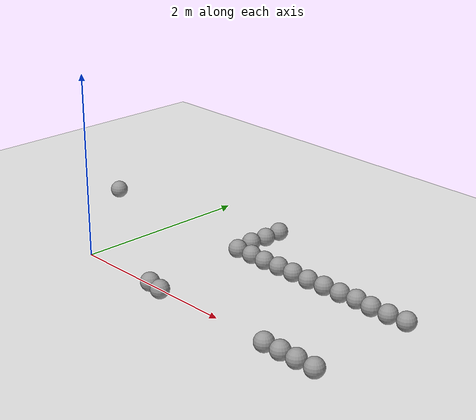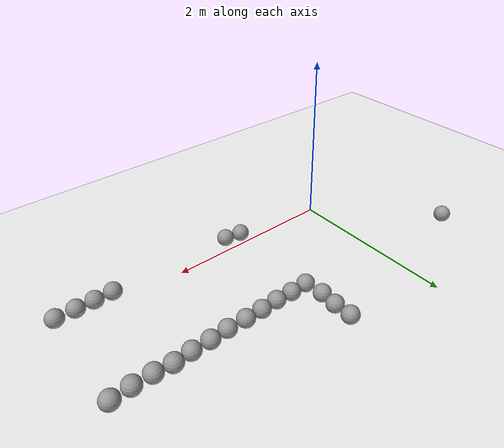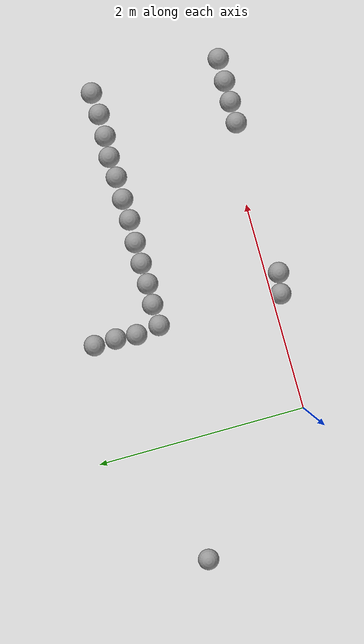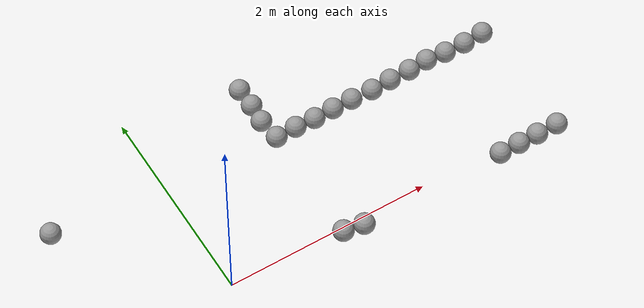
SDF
<sdf version="1.7">
 <world name="default">
  <model name="ground_plane">
   <static>1</static>
   <link name="link">
    <collision name="collision">
     <geometry><plane><normal>0 0 1</normal><size>100 100</size></plane></geometry>
     <surface>
      <contact><collide_bitmask>65535</collide_bitmask></contact>
      <friction><ode><mu>100</mu><mu2>50</mu2></ode></friction>
     </surface>
    </collision>
    <visual name="visual">
     <cast_shadows>0</cast_shadows>
     <geometry><plane><normal>0 0 1</normal><size>100 100</size></plane></geometry>
     <material>
      <script><uri>file://media/materials/scripts/gazebo.material</uri><name>Gazebo/White</name></script>
     </material>
    </visual>
   </link>
  </model>
  <model name="sphere">
   <link name="link_0">
    <inertial>
     <mass>1</mass>
     <inertia><ixx>0.1</ixx><ixy>0</ixy><ixz>0</ixz><iyy>0.1</iyy><iyz>0</iyz><izz>0.1</izz></inertia>
    </inertial>
    <visual name="visual">
     <geometry><sphere><radius>0.1</radius></sphere></geometry>
     <material>
      <lighting>1</lighting>
      <script><uri>file://media/materials/scripts/gazebo.material</uri><name>Gazebo/Grey</name></script>
      <shader type="pixel"><normal_map>__default__</normal_map></shader>
      <ambient>0.3 0.3 0.3 1</ambient>
      <diffuse>0.7 0.7 0.7 1</diffuse>
      <specular>0.01 0.01 0.01 1</specular>
      <emissive>0 0 0 1</emissive>
     </material>
    </visual>
    <collision name="collision">
     <geometry><sphere><radius>0.1</radius></sphere></geometry>
     <surface>
      <friction>
       <ode><mu>1</mu><mu2>1</mu2><fdir1>0 0 0</fdir1><slip1>0</slip1><slip2>0</slip2></ode>
       <torsional>
        <coefficient>1</coefficient>
        <patch_radius>0</patch_radius>
        <surface_radius>0</surface_radius>
        <use_patch_radius>1</use_patch_radius>
        <ode><slip>0</slip></ode>
       </torsional>
      </friction>
      <bounce><restitution_coefficient>0</restitution_coefficient><threshold>1e+06</threshold></bounce>
      <contact>
       <collide_without_contact>0</collide_without_contact>
       <collide_without_contact_bitmask>1</collide_without_contact_bitmask>
       <collide_bitmask>1</collide_bitmask>
       <ode>
        <soft_cfm>0</soft_cfm>
        <soft_erp>0.2</soft_erp>
        <kp>1e+13</kp>
        <kd>1</kd>
        <max_vel>0.01</max_vel>
        <min_depth>0</min_depth>
       </ode>
       <bullet>
        <split_impulse>1</split_impulse>
        <split_impulse_penetration_threshold>-0.01</split_impulse_penetration_threshold>
        <soft_cfm>0</soft_cfm>
        <soft_erp>0.2</soft_erp>
        <kp>1e+13</kp>
        <kd>1</kd>
       </bullet>
      </contact>
     </surface>
    </collision>
   </link>
   <static>0</static>
   <pose>1.12265 1.10164 0.1 0 -0 0</pose>
  </model>
  <model name="sphere_0">
   <link name="link_0">
    <inertial>
     <mass>1</mass>
     <inertia><ixx>0.1</ixx><ixy>0</ixy><ixz>0</ixz><iyy>0.1</iyy><iyz>0</iyz><izz>0.1</izz></inertia>
    </inertial>
    <visual name="visual">
     <geometry><sphere><radius>0.1</radius></sphere></geometry>
     <material>
      <lighting>1</lighting>
      <script><uri>file://media/materials/scripts/gazebo.material</uri><name>Gazebo/Grey</name></script>
      <shader type="pixel"><normal_map>__default__</normal_map></shader>
      <ambient>0.3 0.3 0.3 1</ambient>
      <diffuse>0.7 0.7 0.7 1</diffuse>
      <specular>0.01 0.01 0.01 1</specular>
      <emissive>0 0 0 1</emissive>
     </material>
    </visual>
    <collision name="collision">
     <geometry><sphere><radius>0.1</radius></sphere></geometry>
     <surface>
      <friction>
       <ode><mu>1</mu><mu2>1</mu2><fdir1>0 0 0</fdir1><slip1>0</slip1><slip2>0</slip2></ode>
       <torsional>
        <coefficient>1</coefficient>
        <patch_radius>0</patch_radius>
        <surface_radius>0</surface_radius>
        <use_patch_radius>1</use_patch_radius>
        <ode><slip>0</slip></ode>
       </torsional>
      </friction>
      <bounce><restitution_coefficient>0</restitution_coefficient><threshold>1e+06</threshold></bounce>
      <contact>
       <collide_without_contact>0</collide_without_contact>
       <collide_without_contact_bitmask>1</collide_without_contact_bitmask>
       <collide_bitmask>1</collide_bitmask>
       <ode>
        <soft_cfm>0</soft_cfm>
        <soft_erp>0.2</soft_erp>
        <kp>1e+13</kp>
        <kd>1</kd>
        <max_vel>0.01</max_vel>
        <min_depth>0</min_depth>
       </ode>
       <bullet>
        <split_impulse>1</split_impulse>
        <split_impulse_penetration_threshold>-0.01</split_impulse_penetration_threshold>
        <soft_cfm>0</soft_cfm>
        <soft_erp>0.2</soft_erp>
        <kp>1e+13</kp>
        <kd>1</kd>
       </bullet>
      </contact>
     </surface>
    </collision>
   </link>
   <static>0</static>
   <pose>1.09484 1.32792 0.1 0.007885 -0.000594 2e-06</pose>
  </model>
  <model name="sphere_1">
   <link name="link_0">
    <inertial>
     <mass>1</mass>
     <inertia><ixx>0.1</ixx><ixy>0</ixy><ixz>0</ixz><iyy>0.1</iyy><iyz>0</iyz><izz>0.1</izz></inertia>
    </inertial>
    <visual name="visual">
     <geometry><sphere><radius>0.1</radius></sphere></geometry>
     <material>
      <lighting>1</lighting>
      <script><uri>file://media/materials/scripts/gazebo.material</uri><name>Gazebo/Grey</name></script>
      <shader type="pixel"><normal_map>__default__</normal_map></shader>
      <ambient>0.3 0.3 0.3 1</ambient>
      <diffuse>0.7 0.7 0.7 1</diffuse>
      <specular>0.01 0.01 0.01 1</specular>
      <emissive>0 0 0 1</emissive>
     </material>
    </visual>
    <collision name="collision">
     <geometry><sphere><radius>0.1</radius></sphere></geometry>
     <surface>
      <friction>
       <ode><mu>1</mu><mu2>1</mu2><fdir1>0 0 0</fdir1><slip1>0</slip1><slip2>0</slip2></ode>
       <torsional>
        <coefficient>1</coefficient>
        <patch_radius>0</patch_radius>
        <surface_radius>0</surface_radius>
        <use_patch_radius>1</use_patch_radius>
        <ode><slip>0</slip></ode>
       </torsional>
      </friction>
      <bounce><restitution_coefficient>0</restitution_coefficient><threshold>1e+06</threshold></bounce>
      <contact>
       <collide_without_contact>0</collide_without_contact>
       <collide_without_contact_bitmask>1</collide_without_contact_bitmask>
       <collide_bitmask>1</collide_bitmask>
       <ode>
        <soft_cfm>0</soft_cfm>
        <soft_erp>0.2</soft_erp>
        <kp>1e+13</kp>
        <kd>1</kd>
        <max_vel>0.01</max_vel>
        <min_depth>0</min_depth>
       </ode>
       <bullet>
        <split_impulse>1</split_impulse>
        <split_impulse_penetration_threshold>-0.01</split_impulse_penetration_threshold>
        <soft_cfm>0</soft_cfm>
        <soft_erp>0.2</soft_erp>
        <kp>1e+13</kp>
        <kd>1</kd>
       </bullet>
      </contact>
     </surface>
    </collision>
   </link>
   <static>0</static>
   <pose>1.10973 1.52904 0.1 -0.008762 0.000649 1e-06</pose>
  </model>
  <model name="sphere_2">
   <link name="link_0">
    <inertial>
     <mass>1</mass>
     <inertia><ixx>0.1</ixx><ixy>0</ixy><ixz>0</ixz><iyy>0.1</iyy><iyz>0</iyz><izz>0.1</izz></inertia>
    </inertial>
    <visual name="visual">
     <geometry><sphere><radius>0.1</radius></sphere></geometry>
     <material>
      <lighting>1</lighting>
      <script><uri>file://media/materials/scripts/gazebo.material</uri><name>Gazebo/Grey</name></script>
      <shader type="pixel"><normal_map>__default__</normal_map></shader>
      <ambient>0.3 0.3 0.3 1</ambient>
      <diffuse>0.7 0.7 0.7 1</diffuse>
      <specular>0.01 0.01 0.01 1</specular>
      <emissive>0 0 0 1</emissive>
     </material>
    </visual>
    <collision name="collision">
     <geometry><sphere><radius>0.1</radius></sphere></geometry>
     <surface>
      <friction>
       <ode><mu>1</mu><mu2>1</mu2><fdir1>0 0 0</fdir1><slip1>0</slip1><slip2>0</slip2></ode>
       <torsional>
        <coefficient>1</coefficient>
        <patch_radius>0</patch_radius>
        <surface_radius>0</surface_radius>
        <use_patch_radius>1</use_patch_radius>
        <ode><slip>0</slip></ode>
       </torsional>
      </friction>
      <bounce><restitution_coefficient>0</restitution_coefficient><threshold>1e+06</threshold></bounce>
      <contact>
       <collide_without_contact>0</collide_without_contact>
       <collide_without_contact_bitmask>1</collide_without_contact_bitmask>
       <collide_bitmask>1</collide_bitmask>
       <ode>
        <soft_cfm>0</soft_cfm>
        <soft_erp>0.2</soft_erp>
        <kp>1e+13</kp>
        <kd>1</kd>
        <max_vel>0.01</max_vel>
        <min_depth>0</min_depth>
       </ode>
       <bullet>
        <split_impulse>1</split_impulse>
        <split_impulse_penetration_threshold>-0.01</split_impulse_penetration_threshold>
        <soft_cfm>0</soft_cfm>
        <soft_erp>0.2</soft_erp>
        <kp>1e+13</kp>
        <kd>1</kd>
       </bullet>
      </contact>
     </surface>
    </collision>
   </link>
   <static>0</static>
   <pose>1.10382 1.73894 0.1 0.007911 -0.00051 2e-06</pose>
  </model>
  <model name="sphere_37">
   <link name="link_0">
    <inertial>
     <mass>1</mass>
     <inertia><ixx>0.1</ixx><ixy>0</ixy><ixz>0</ixz><iyy>0.1</iyy><iyz>0</iyz><izz>0.1</izz></inertia>
    </inertial>
    <visual name="visual">
     <geometry><sphere><radius>0.1</radius></sphere></geometry>
     <material>
      <lighting>1</lighting>
      <script><uri>file://media/materials/scripts/gazebo.material</uri><name>Gazebo/Grey</name></script>
      <shader type="pixel"><normal_map>__default__</normal_map></shader>
      <ambient>0.3 0.3 0.3 1</ambient>
      <diffuse>0.7 0.7 0.7 1</diffuse>
      <specular>0.01 0.01 0.01 1</specular>
      <emissive>0 0 0 1</emissive>
     </material>
    </visual>
    <collision name="collision">
     <geometry><sphere><radius>0.1</radius></sphere></geometry>
     <surface>
      <friction>
       <ode><mu>1</mu><mu2>1</mu2><fdir1>0 0 0</fdir1><slip1>0</slip1><slip2>0</slip2></ode>
       <torsional>
        <coefficient>1</coefficient>
        <patch_radius>0</patch_radius>
        <surface_radius>0</surface_radius>
        <use_patch_radius>1</use_patch_radius>
        <ode><slip>0</slip></ode>
       </torsional>
      </friction>
      <bounce><restitution_coefficient>0</restitution_coefficient><threshold>1e+06</threshold></bounce>
      <contact>
       <collide_without_contact>0</collide_without_contact>
       <collide_without_contact_bitmask>1</collide_without_contact_bitmask>
       <collide_bitmask>1</collide_bitmask>
       <ode>
        <soft_cfm>0</soft_cfm>
        <soft_erp>0.2</soft_erp>
        <kp>1e+13</kp>
        <kd>1</kd>
        <max_vel>0.01</max_vel>
        <min_depth>0</min_depth>
       </ode>
       <bullet>
        <split_impulse>1</split_impulse>
        <split_impulse_penetration_threshold>-0.01</split_impulse_penetration_threshold>
        <soft_cfm>0</soft_cfm>
        <soft_erp>0.2</soft_erp>
        <kp>1e+13</kp>
        <kd>1</kd>
       </bullet>
      </contact>
     </surface>
    </collision>
   </link>
   <static>0</static>
   <pose>-1.12279 1.24781 0.1 0 -0 0</pose>
  </model>
  <model name="sphere_93">
   <link name="link_0">
    <inertial>
     <mass>1</mass>
     <inertia><ixx>0.1</ixx><ixy>0</ixy><ixz>0</ixz><iyy>0.1</iyy><iyz>0</iyz><izz>0.1</izz></inertia>
    </inertial>
    <visual name="visual">
     <geometry><sphere><radius>0.1</radius></sphere></geometry>
     <material>
      <lighting>1</lighting>
      <script><uri>file://media/materials/scripts/gazebo.material</uri><name>Gazebo/Grey</name></script>
      <shader type="pixel"><normal_map>__default__</normal_map></shader>
      <ambient>0.3 0.3 0.3 1</ambient>
      <diffuse>0.7 0.7 0.7 1</diffuse>
      <specular>0.01 0.01 0.01 1</specular>
      <emissive>0 0 0 1</emissive>
     </material>
    </visual>
    <collision name="collision">
     <geometry><sphere><radius>0.1</radius></sphere></geometry>
     <surface>
      <friction>
       <ode><mu>1</mu><mu2>1</mu2><fdir1>0 0 0</fdir1><slip1>0</slip1><slip2>0</slip2></ode>
       <torsional>
        <coefficient>1</coefficient>
        <patch_radius>0</patch_radius>
        <surface_radius>0</surface_radius>
        <use_patch_radius>1</use_patch_radius>
        <ode><slip>0</slip></ode>
       </torsional>
      </friction>
      <bounce><restitution_coefficient>0</restitution_coefficient><threshold>1e+06</threshold></bounce>
      <contact>
       <collide_without_contact>0</collide_without_contact>
       <collide_without_contact_bitmask>1</collide_without_contact_bitmask>
       <collide_bitmask>1</collide_bitmask>
       <ode>
        <soft_cfm>0</soft_cfm>
        <soft_erp>0.2</soft_erp>
        <kp>1e+13</kp>
        <kd>1</kd>
        <max_vel>0.01</max_vel>
        <min_depth>0</min_depth>
       </ode>
       <bullet>
        <split_impulse>1</split_impulse>
        <split_impulse_penetration_threshold>-0.01</split_impulse_penetration_threshold>
        <soft_cfm>0</soft_cfm>
        <soft_erp>0.2</soft_erp>
        <kp>1e+13</kp>
        <kd>1</kd>
       </bullet>
      </contact>
     </surface>
    </collision>
   </link>
   <static>0</static>
   <pose>1.10054 -0.081045 0.1 0 -0 0</pose>
  </model>
  <model name="sphere_102">
   <link name="link_0">
    <inertial>
     <mass>1</mass>
     <inertia><ixx>0.1</ixx><ixy>0</ixy><ixz>0</ixz><iyy>0.1</iyy><iyz>0</iyz><izz>0.1</izz></inertia>
    </inertial>
    <visual name="visual">
     <geometry><sphere><radius>0.1</radius></sphere></geometry>
     <material>
      <lighting>1</lighting>
      <script><uri>file://media/materials/scripts/gazebo.material</uri><name>Gazebo/Grey</name></script>
      <shader type="pixel"><normal_map>__default__</normal_map></shader>
      <ambient>0.3 0.3 0.3 1</ambient>
      <diffuse>0.7 0.7 0.7 1</diffuse>
      <specular>0.01 0.01 0.01 1</specular>
      <emissive>0 0 0 1</emissive>
     </material>
    </visual>
    <collision name="collision">
     <geometry><sphere><radius>0.1</radius></sphere></geometry>
     <surface>
      <friction>
       <ode><mu>1</mu><mu2>1</mu2><fdir1>0 0 0</fdir1><slip1>0</slip1><slip2>0</slip2></ode>
       <torsional>
        <coefficient>1</coefficient>
        <patch_radius>0</patch_radius>
        <surface_radius>0</surface_radius>
        <use_patch_radius>1</use_patch_radius>
        <ode><slip>0</slip></ode>
       </torsional>
      </friction>
      <bounce><restitution_coefficient>0</restitution_coefficient><threshold>1e+06</threshold></bounce>
      <contact>
       <collide_without_contact>0</collide_without_contact>
       <collide_without_contact_bitmask>1</collide_without_contact_bitmask>
       <collide_bitmask>1</collide_bitmask>
       <ode>
        <soft_cfm>0</soft_cfm>
        <soft_erp>0.2</soft_erp>
        <kp>1e+13</kp>
        <kd>1</kd>
        <max_vel>0.01</max_vel>
        <min_depth>0</min_depth>
       </ode>
       <bullet>
        <split_impulse>1</split_impulse>
        <split_impulse_penetration_threshold>-0.01</split_impulse_penetration_threshold>
        <soft_cfm>0</soft_cfm>
        <soft_erp>0.2</soft_erp>
        <kp>1e+13</kp>
        <kd>1</kd>
       </bullet>
      </contact>
     </surface>
    </collision>
   </link>
   <static>0</static>
   <pose>1.32851 1.10709 0.1 -0.000271 -0.007928 3e-06</pose>
  </model>
  <model name="sphere_103">
   <link name="link_0">
    <inertial>
     <mass>1</mass>
     <inertia><ixx>0.1</ixx><ixy>0</ixy><ixz>0</ixz><iyy>0.1</iyy><iyz>0</iyz><izz>0.1</izz></inertia>
    </inertial>
    <visual name="visual">
     <geometry><sphere><radius>0.1</radius></sphere></geometry>
     <material>
      <lighting>1</lighting>
      <script><uri>file://media/materials/scripts/gazebo.material</uri><name>Gazebo/Grey</name></script>
      <shader type="pixel"><normal_map>__default__</normal_map></shader>
      <ambient>0.3 0.3 0.3 1</ambient>
      <diffuse>0.7 0.7 0.7 1</diffuse>
      <specular>0.01 0.01 0.01 1</specular>
      <emissive>0 0 0 1</emissive>
     </material>
    </visual>
    <collision name="collision">
     <geometry><sphere><radius>0.1</radius></sphere></geometry>
     <surface>
      <friction>
       <ode><mu>1</mu><mu2>1</mu2><fdir1>0 0 0</fdir1><slip1>0</slip1><slip2>0</slip2></ode>
       <torsional>
        <coefficient>1</coefficient>
        <patch_radius>0</patch_radius>
        <surface_radius>0</surface_radius>
        <use_patch_radius>1</use_patch_radius>
        <ode><slip>0</slip></ode>
       </torsional>
      </friction>
      <bounce><restitution_coefficient>0</restitution_coefficient><threshold>1e+06</threshold></bounce>
      <contact>
       <collide_without_contact>0</collide_without_contact>
       <collide_without_contact_bitmask>1</collide_without_contact_bitmask>
       <collide_bitmask>1</collide_bitmask>
       <ode>
        <soft_cfm>0</soft_cfm>
        <soft_erp>0.2</soft_erp>
        <kp>1e+13</kp>
        <kd>1</kd>
        <max_vel>0.01</max_vel>
        <min_depth>0</min_depth>
       </ode>
       <bullet>
        <split_impulse>1</split_impulse>
        <split_impulse_penetration_threshold>-0.01</split_impulse_penetration_threshold>
        <soft_cfm>0</soft_cfm>
        <soft_erp>0.2</soft_erp>
        <kp>1e+13</kp>
        <kd>1</kd>
       </bullet>
      </contact>
     </surface>
    </collision>
   </link>
   <static>0</static>
   <pose>1.52841 1.10035 0.1 0.00055 0.001087 0</pose>
  </model>
  <model name="sphere_104">
   <link name="link_0">
    <inertial>
     <mass>1</mass>
     <inertia><ixx>0.1</ixx><ixy>0</ixy><ixz>0</ixz><iyy>0.1</iyy><iyz>0</iyz><izz>0.1</izz></inertia>
    </inertial>
    <visual name="visual">
     <geometry><sphere><radius>0.1</radius></sphere></geometry>
     <material>
      <lighting>1</lighting>
      <script><uri>file://media/materials/scripts/gazebo.material</uri><name>Gazebo/Grey</name></script>
      <shader type="pixel"><normal_map>__default__</normal_map></shader>
      <ambient>0.3 0.3 0.3 1</ambient>
      <diffuse>0.7 0.7 0.7 1</diffuse>
      <specular>0.01 0.01 0.01 1</specular>
      <emissive>0 0 0 1</emissive>
     </material>
    </visual>
    <collision name="collision">
     <geometry><sphere><radius>0.1</radius></sphere></geometry>
     <surface>
      <friction>
       <ode><mu>1</mu><mu2>1</mu2><fdir1>0 0 0</fdir1><slip1>0</slip1><slip2>0</slip2></ode>
       <torsional>
        <coefficient>1</coefficient>
        <patch_radius>0</patch_radius>
        <surface_radius>0</surface_radius>
        <use_patch_radius>1</use_patch_radius>
        <ode><slip>0</slip></ode>
       </torsional>
      </friction>
      <bounce><restitution_coefficient>0</restitution_coefficient><threshold>1e+06</threshold></bounce>
      <contact>
       <collide_without_contact>0</collide_without_contact>
       <collide_without_contact_bitmask>1</collide_without_contact_bitmask>
       <collide_bitmask>1</collide_bitmask>
       <ode>
        <soft_cfm>0</soft_cfm>
        <soft_erp>0.2</soft_erp>
        <kp>1e+13</kp>
        <kd>1</kd>
        <max_vel>0.01</max_vel>
        <min_depth>0</min_depth>
       </ode>
       <bullet>
        <split_impulse>1</split_impulse>
        <split_impulse_penetration_threshold>-0.01</split_impulse_penetration_threshold>
        <soft_cfm>0</soft_cfm>
        <soft_erp>0.2</soft_erp>
        <kp>1e+13</kp>
        <kd>1</kd>
       </bullet>
      </contact>
     </surface>
    </collision>
   </link>
   <static>0</static>
   <pose>1.72997 1.10661 0.1 -0.000274 0.008812 -6e-06</pose>
  </model>
  <model name="sphere_105">
   <link name="link_0">
    <inertial>
     <mass>1</mass>
     <inertia><ixx>0.1</ixx><ixy>0</ixy><ixz>0</ixz><iyy>0.1</iyy><iyz>0</iyz><izz>0.1</izz></inertia>
    </inertial>
    <visual name="visual">
     <geometry><sphere><radius>0.1</radius></sphere></geometry>
     <material>
      <lighting>1</lighting>
      <script><uri>file://media/materials/scripts/gazebo.material</uri><name>Gazebo/Grey</name></script>
      <shader type="pixel"><normal_map>__default__</normal_map></shader>
      <ambient>0.3 0.3 0.3 1</ambient>
      <diffuse>0.7 0.7 0.7 1</diffuse>
      <specular>0.01 0.01 0.01 1</specular>
      <emissive>0 0 0 1</emissive>
     </material>
    </visual>
    <collision name="collision">
     <geometry><sphere><radius>0.1</radius></sphere></geometry>
     <surface>
      <friction>
       <ode><mu>1</mu><mu2>1</mu2><fdir1>0 0 0</fdir1><slip1>0</slip1><slip2>0</slip2></ode>
       <torsional>
        <coefficient>1</coefficient>
        <patch_radius>0</patch_radius>
        <surface_radius>0</surface_radius>
        <use_patch_radius>1</use_patch_radius>
        <ode><slip>0</slip></ode>
       </torsional>
      </friction>
      <bounce><restitution_coefficient>0</restitution_coefficient><threshold>1e+06</threshold></bounce>
      <contact>
       <collide_without_contact>0</collide_without_contact>
       <collide_without_contact_bitmask>1</collide_without_contact_bitmask>
       <collide_bitmask>1</collide_bitmask>
       <ode>
        <soft_cfm>0</soft_cfm>
        <soft_erp>0.2</soft_erp>
        <kp>1e+13</kp>
        <kd>1</kd>
        <max_vel>0.01</max_vel>
        <min_depth>0</min_depth>
       </ode>
       <bullet>
        <split_impulse>1</split_impulse>
        <split_impulse_penetration_threshold>-0.01</split_impulse_penetration_threshold>
        <soft_cfm>0</soft_cfm>
        <soft_erp>0.2</soft_erp>
        <kp>1e+13</kp>
        <kd>1</kd>
       </bullet>
      </contact>
     </surface>
    </collision>
   </link>
   <static>0</static>
   <pose>1.9344 1.10728 0.1 0 -0 0</pose>
  </model>
  <model name="sphere_106">
   <link name="link_0">
    <inertial>
     <mass>1</mass>
     <inertia><ixx>0.1</ixx><ixy>0</ixy><ixz>0</ixz><iyy>0.1</iyy><iyz>0</iyz><izz>0.1</izz></inertia>
    </inertial>
    <visual name="visual">
     <geometry><sphere><radius>0.1</radius></sphere></geometry>
     <material>
      <lighting>1</lighting>
      <script><uri>file://media/materials/scripts/gazebo.material</uri><name>Gazebo/Grey</name></script>
      <shader type="pixel"><normal_map>__default__</normal_map></shader>
      <ambient>0.3 0.3 0.3 1</ambient>
      <diffuse>0.7 0.7 0.7 1</diffuse>
      <specular>0.01 0.01 0.01 1</specular>
      <emissive>0 0 0 1</emissive>
     </material>
    </visual>
    <collision name="collision">
     <geometry><sphere><radius>0.1</radius></sphere></geometry>
     <surface>
      <friction>
       <ode><mu>1</mu><mu2>1</mu2><fdir1>0 0 0</fdir1><slip1>0</slip1><slip2>0</slip2></ode>
       <torsional>
        <coefficient>1</coefficient>
        <patch_radius>0</patch_radius>
        <surface_radius>0</surface_radius>
        <use_patch_radius>1</use_patch_radius>
        <ode><slip>0</slip></ode>
       </torsional>
      </friction>
      <bounce><restitution_coefficient>0</restitution_coefficient><threshold>1e+06</threshold></bounce>
      <contact>
       <collide_without_contact>0</collide_without_contact>
       <collide_without_contact_bitmask>1</collide_without_contact_bitmask>
       <collide_bitmask>1</collide_bitmask>
       <ode>
        <soft_cfm>0</soft_cfm>
        <soft_erp>0.2</soft_erp>
        <kp>1e+13</kp>
        <kd>1</kd>
        <max_vel>0.01</max_vel>
        <min_depth>0</min_depth>
       </ode>
       <bullet>
        <split_impulse>1</split_impulse>
        <split_impulse_penetration_threshold>-0.01</split_impulse_penetration_threshold>
        <soft_cfm>0</soft_cfm>
        <soft_erp>0.2</soft_erp>
        <kp>1e+13</kp>
        <kd>1</kd>
       </bullet>
      </contact>
     </surface>
    </collision>
   </link>
   <static>0</static>
   <pose>2.15319 1.101 0.1 0 -0 0</pose>
  </model>
  <model name="sphere_107">
   <link name="link_0">
    <inertial>
     <mass>1</mass>
     <inertia><ixx>0.1</ixx><ixy>0</ixy><ixz>0</ixz><iyy>0.1</iyy><iyz>0</iyz><izz>0.1</izz></inertia>
    </inertial>
    <visual name="visual">
     <geometry><sphere><radius>0.1</radius></sphere></geometry>
     <material>
      <lighting>1</lighting>
      <script><uri>file://media/materials/scripts/gazebo.material</uri><name>Gazebo/Grey</name></script>
      <shader type="pixel"><normal_map>__default__</normal_map></shader>
      <ambient>0.3 0.3 0.3 1</ambient>
      <diffuse>0.7 0.7 0.7 1</diffuse>
      <specular>0.01 0.01 0.01 1</specular>
      <emissive>0 0 0 1</emissive>
     </material>
    </visual>
    <collision name="collision">
     <geometry><sphere><radius>0.1</radius></sphere></geometry>
     <surface>
      <friction>
       <ode><mu>1</mu><mu2>1</mu2><fdir1>0 0 0</fdir1><slip1>0</slip1><slip2>0</slip2></ode>
       <torsional>
        <coefficient>1</coefficient>
        <patch_radius>0</patch_radius>
        <surface_radius>0</surface_radius>
        <use_patch_radius>1</use_patch_radius>
        <ode><slip>0</slip></ode>
       </torsional>
      </friction>
      <bounce><restitution_coefficient>0</restitution_coefficient><threshold>1e+06</threshold></bounce>
      <contact>
       <collide_without_contact>0</collide_without_contact>
       <collide_without_contact_bitmask>1</collide_without_contact_bitmask>
       <collide_bitmask>1</collide_bitmask>
       <ode>
        <soft_cfm>0</soft_cfm>
        <soft_erp>0.2</soft_erp>
        <kp>1e+13</kp>
        <kd>1</kd>
        <max_vel>0.01</max_vel>
        <min_depth>0</min_depth>
       </ode>
       <bullet>
        <split_impulse>1</split_impulse>
        <split_impulse_penetration_threshold>-0.01</split_impulse_penetration_threshold>
        <soft_cfm>0</soft_cfm>
        <soft_erp>0.2</soft_erp>
        <kp>1e+13</kp>
        <kd>1</kd>
       </bullet>
      </contact>
     </surface>
    </collision>
   </link>
   <static>0</static>
   <pose>2.35932 1.11126 0.1 0 -0 0</pose>
  </model>
  <model name="sphere_108">
   <link name="link_0">
    <inertial>
     <mass>1</mass>
     <inertia><ixx>0.1</ixx><ixy>0</ixy><ixz>0</ixz><iyy>0.1</iyy><iyz>0</iyz><izz>0.1</izz></inertia>
    </inertial>
    <visual name="visual">
     <geometry><sphere><radius>0.1</radius></sphere></geometry>
     <material>
      <lighting>1</lighting>
      <script><uri>file://media/materials/scripts/gazebo.material</uri><name>Gazebo/Grey</name></script>
      <shader type="pixel"><normal_map>__default__</normal_map></shader>
      <ambient>0.3 0.3 0.3 1</ambient>
      <diffuse>0.7 0.7 0.7 1</diffuse>
      <specular>0.01 0.01 0.01 1</specular>
      <emissive>0 0 0 1</emissive>
     </material>
    </visual>
    <collision name="collision">
     <geometry><sphere><radius>0.1</radius></sphere></geometry>
     <surface>
      <friction>
       <ode><mu>1</mu><mu2>1</mu2><fdir1>0 0 0</fdir1><slip1>0</slip1><slip2>0</slip2></ode>
       <torsional>
        <coefficient>1</coefficient>
        <patch_radius>0</patch_radius>
        <surface_radius>0</surface_radius>
        <use_patch_radius>1</use_patch_radius>
        <ode><slip>0</slip></ode>
       </torsional>
      </friction>
      <bounce><restitution_coefficient>0</restitution_coefficient><threshold>1e+06</threshold></bounce>
      <contact>
       <collide_without_contact>0</collide_without_contact>
       <collide_without_contact_bitmask>1</collide_without_contact_bitmask>
       <collide_bitmask>1</collide_bitmask>
       <ode>
        <soft_cfm>0</soft_cfm>
        <soft_erp>0.2</soft_erp>
        <kp>1e+13</kp>
        <kd>1</kd>
        <max_vel>0.01</max_vel>
        <min_depth>0</min_depth>
       </ode>
       <bullet>
        <split_impulse>1</split_impulse>
        <split_impulse_penetration_threshold>-0.01</split_impulse_penetration_threshold>
        <soft_cfm>0</soft_cfm>
        <soft_erp>0.2</soft_erp>
        <kp>1e+13</kp>
        <kd>1</kd>
       </bullet>
      </contact>
     </surface>
    </collision>
   </link>
   <static>0</static>
   <pose>2.57294 1.11245 0.1 0.00212 -0.015611 -0.001092</pose>
  </model>
  <model name="sphere_109">
   <link name="link_0">
    <inertial>
     <mass>1</mass>
     <inertia><ixx>0.1</ixx><ixy>0</ixy><ixz>0</ixz><iyy>0.1</iyy><iyz>0</iyz><izz>0.1</izz></inertia>
    </inertial>
    <visual name="visual">
     <geometry><sphere><radius>0.1</radius></sphere></geometry>
     <material>
      <lighting>1</lighting>
      <script><uri>file://media/materials/scripts/gazebo.material</uri><name>Gazebo/Grey</name></script>
      <shader type="pixel"><normal_map>__default__</normal_map></shader>
      <ambient>0.3 0.3 0.3 1</ambient>
      <diffuse>0.7 0.7 0.7 1</diffuse>
      <specular>0.01 0.01 0.01 1</specular>
      <emissive>0 0 0 1</emissive>
     </material>
    </visual>
    <collision name="collision">
     <geometry><sphere><radius>0.1</radius></sphere></geometry>
     <surface>
      <friction>
       <ode><mu>1</mu><mu2>1</mu2><fdir1>0 0 0</fdir1><slip1>0</slip1><slip2>0</slip2></ode>
       <torsional>
        <coefficient>1</coefficient>
        <patch_radius>0</patch_radius>
        <surface_radius>0</surface_radius>
        <use_patch_radius>1</use_patch_radius>
        <ode><slip>0</slip></ode>
       </torsional>
      </friction>
      <bounce><restitution_coefficient>0</restitution_coefficient><threshold>1e+06</threshold></bounce>
      <contact>
       <collide_without_contact>0</collide_without_contact>
       <collide_without_contact_bitmask>1</collide_without_contact_bitmask>
       <collide_bitmask>1</collide_bitmask>
       <ode>
        <soft_cfm>0</soft_cfm>
        <soft_erp>0.2</soft_erp>
        <kp>1e+13</kp>
        <kd>1</kd>
        <max_vel>0.01</max_vel>
        <min_depth>0</min_depth>
       </ode>
       <bullet>
        <split_impulse>1</split_impulse>
        <split_impulse_penetration_threshold>-0.01</split_impulse_penetration_threshold>
        <soft_cfm>0</soft_cfm>
        <soft_erp>0.2</soft_erp>
        <kp>1e+13</kp>
        <kd>1</kd>
       </bullet>
      </contact>
     </surface>
    </collision>
   </link>
   <static>0</static>
   <pose>1.29824 -0.115109 0.1 -0.000117 -0.009253 1.3e-05</pose>
  </model>
  <model name="sphere_116">
   <link name="link_0">
    <inertial>
     <mass>1</mass>
     <inertia><ixx>0.1</ixx><ixy>0</ixy><ixz>0</ixz><iyy>0.1</iyy><iyz>0</iyz><izz>0.1</izz></inertia>
    </inertial>
    <visual name="visual">
     <geometry><sphere><radius>0.1</radius></sphere></geometry>
     <material>
      <lighting>1</lighting>
      <script><uri>file://media/materials/scripts/gazebo.material</uri><name>Gazebo/Grey</name></script>
      <shader type="pixel"><normal_map>__default__</normal_map></shader>
      <ambient>0.3 0.3 0.3 1</ambient>
      <diffuse>0.7 0.7 0.7 1</diffuse>
      <specular>0.01 0.01 0.01 1</specular>
      <emissive>0 0 0 1</emissive>
     </material>
    </visual>
    <collision name="collision">
     <geometry><sphere><radius>0.1</radius></sphere></geometry>
     <surface>
      <friction>
       <ode><mu>1</mu><mu2>1</mu2><fdir1>0 0 0</fdir1><slip1>0</slip1><slip2>0</slip2></ode>
       <torsional>
        <coefficient>1</coefficient>
        <patch_radius>0</patch_radius>
        <surface_radius>0</surface_radius>
        <use_patch_radius>1</use_patch_radius>
        <ode><slip>0</slip></ode>
       </torsional>
      </friction>
      <bounce><restitution_coefficient>0</restitution_coefficient><threshold>1e+06</threshold></bounce>
      <contact>
       <collide_without_contact>0</collide_without_contact>
       <collide_without_contact_bitmask>1</collide_without_contact_bitmask>
       <collide_bitmask>1</collide_bitmask>
       <ode>
        <soft_cfm>0</soft_cfm>
        <soft_erp>0.2</soft_erp>
        <kp>1e+13</kp>
        <kd>1</kd>
        <max_vel>0.01</max_vel>
        <min_depth>0</min_depth>
       </ode>
       <bullet>
        <split_impulse>1</split_impulse>
        <split_impulse_penetration_threshold>-0.01</split_impulse_penetration_threshold>
        <soft_cfm>0</soft_cfm>
        <soft_erp>0.2</soft_erp>
        <kp>1e+13</kp>
        <kd>1</kd>
       </bullet>
      </contact>
     </surface>
    </collision>
   </link>
   <static>0</static>
   <pose>2.76281 -0.112515 0.1 0 -0 0</pose>
  </model>
  <model name="sphere_117">
   <link name="link_0">
    <inertial>
     <mass>1</mass>
     <inertia><ixx>0.1</ixx><ixy>0</ixy><ixz>0</ixz><iyy>0.1</iyy><iyz>0</iyz><izz>0.1</izz></inertia>
    </inertial>
    <visual name="visual">
     <geometry><sphere><radius>0.1</radius></sphere></geometry>
     <material>
      <lighting>1</lighting>
      <script><uri>file://media/materials/scripts/gazebo.material</uri><name>Gazebo/Grey</name></script>
      <shader type="pixel"><normal_map>__default__</normal_map></shader>
      <ambient>0.3 0.3 0.3 1</ambient>
      <diffuse>0.7 0.7 0.7 1</diffuse>
      <specular>0.01 0.01 0.01 1</specular>
      <emissive>0 0 0 1</emissive>
     </material>
    </visual>
    <collision name="collision">
     <geometry><sphere><radius>0.1</radius></sphere></geometry>
     <surface>
      <friction>
       <ode><mu>1</mu><mu2>1</mu2><fdir1>0 0 0</fdir1><slip1>0</slip1><slip2>0</slip2></ode>
       <torsional>
        <coefficient>1</coefficient>
        <patch_radius>0</patch_radius>
        <surface_radius>0</surface_radius>
        <use_patch_radius>1</use_patch_radius>
        <ode><slip>0</slip></ode>
       </torsional>
      </friction>
      <bounce><restitution_coefficient>0</restitution_coefficient><threshold>1e+06</threshold></bounce>
      <contact>
       <collide_without_contact>0</collide_without_contact>
       <collide_without_contact_bitmask>1</collide_without_contact_bitmask>
       <collide_bitmask>1</collide_bitmask>
       <ode>
        <soft_cfm>0</soft_cfm>
        <soft_erp>0.2</soft_erp>
        <kp>1e+13</kp>
        <kd>1</kd>
        <max_vel>0.01</max_vel>
        <min_depth>0</min_depth>
       </ode>
       <bullet>
        <split_impulse>1</split_impulse>
        <split_impulse_penetration_threshold>-0.01</split_impulse_penetration_threshold>
        <soft_cfm>0</soft_cfm>
        <soft_erp>0.2</soft_erp>
        <kp>1e+13</kp>
        <kd>1</kd>
       </bullet>
      </contact>
     </surface>
    </collision>
   </link>
   <static>0</static>
   <pose>2.77403 1.12747 0.1 -0.003196 0.017316 -0.001773</pose>
  </model>
  <model name="sphere_118">
   <link name="link_0">
    <inertial>
     <mass>1</mass>
     <inertia><ixx>0.1</ixx><ixy>0</ixy><ixz>0</ixz><iyy>0.1</iyy><iyz>0</iyz><izz>0.1</izz></inertia>
    </inertial>
    <visual name="visual">
     <geometry><sphere><radius>0.1</radius></sphere></geometry>
     <material>
      <lighting>1</lighting>
      <script><uri>file://media/materials/scripts/gazebo.material</uri><name>Gazebo/Grey</name></script>
      <shader type="pixel"><normal_map>__default__</normal_map></shader>
      <ambient>0.3 0.3 0.3 1</ambient>
      <diffuse>0.7 0.7 0.7 1</diffuse>
      <specular>0.01 0.01 0.01 1</specular>
      <emissive>0 0 0 1</emissive>
     </material>
    </visual>
    <collision name="collision">
     <geometry><sphere><radius>0.1</radius></sphere></geometry>
     <surface>
      <friction>
       <ode><mu>1</mu><mu2>1</mu2><fdir1>0 0 0</fdir1><slip1>0</slip1><slip2>0</slip2></ode>
       <torsional>
        <coefficient>1</coefficient>
        <patch_radius>0</patch_radius>
        <surface_radius>0</surface_radius>
        <use_patch_radius>1</use_patch_radius>
        <ode><slip>0</slip></ode>
       </torsional>
      </friction>
      <bounce><restitution_coefficient>0</restitution_coefficient><threshold>1e+06</threshold></bounce>
      <contact>
       <collide_without_contact>0</collide_without_contact>
       <collide_without_contact_bitmask>1</collide_without_contact_bitmask>
       <collide_bitmask>1</collide_bitmask>
       <ode>
        <soft_cfm>0</soft_cfm>
        <soft_erp>0.2</soft_erp>
        <kp>1e+13</kp>
        <kd>1</kd>
        <max_vel>0.01</max_vel>
        <min_depth>0</min_depth>
       </ode>
       <bullet>
        <split_impulse>1</split_impulse>
        <split_impulse_penetration_threshold>-0.01</split_impulse_penetration_threshold>
        <soft_cfm>0</soft_cfm>
        <soft_erp>0.2</soft_erp>
        <kp>1e+13</kp>
        <kd>1</kd>
       </bullet>
      </contact>
     </surface>
    </collision>
   </link>
   <static>0</static>
   <pose>2.97339 1.11081 0.1 0.000142 0.008934 -0.000666</pose>
  </model>
  <model name="sphere_119">
   <link name="link_0">
    <inertial>
     <mass>1</mass>
     <inertia><ixx>0.1</ixx><ixy>0</ixy><ixz>0</ixz><iyy>0.1</iyy><iyz>0</iyz><izz>0.1</izz></inertia>
    </inertial>
    <visual name="visual">
     <geometry><sphere><radius>0.1</radius></sphere></geometry>
     <material>
      <lighting>1</lighting>
      <script><uri>file://media/materials/scripts/gazebo.material</uri><name>Gazebo/Grey</name></script>
      <shader type="pixel"><normal_map>__default__</normal_map></shader>
      <ambient>0.3 0.3 0.3 1</ambient>
      <diffuse>0.7 0.7 0.7 1</diffuse>
      <specular>0.01 0.01 0.01 1</specular>
      <emissive>0 0 0 1</emissive>
     </material>
    </visual>
    <collision name="collision">
     <geometry><sphere><radius>0.1</radius></sphere></geometry>
     <surface>
      <friction>
       <ode><mu>1</mu><mu2>1</mu2><fdir1>0 0 0</fdir1><slip1>0</slip1><slip2>0</slip2></ode>
       <torsional>
        <coefficient>1</coefficient>
        <patch_radius>0</patch_radius>
        <surface_radius>0</surface_radius>
        <use_patch_radius>1</use_patch_radius>
        <ode><slip>0</slip></ode>
       </torsional>
      </friction>
      <bounce><restitution_coefficient>0</restitution_coefficient><threshold>1e+06</threshold></bounce>
      <contact>
       <collide_without_contact>0</collide_without_contact>
       <collide_without_contact_bitmask>1</collide_without_contact_bitmask>
       <collide_bitmask>1</collide_bitmask>
       <ode>
        <soft_cfm>0</soft_cfm>
        <soft_erp>0.2</soft_erp>
        <kp>1e+13</kp>
        <kd>1</kd>
        <max_vel>0.01</max_vel>
        <min_depth>0</min_depth>
       </ode>
       <bullet>
        <split_impulse>1</split_impulse>
        <split_impulse_penetration_threshold>-0.01</split_impulse_penetration_threshold>
        <soft_cfm>0</soft_cfm>
        <soft_erp>0.2</soft_erp>
        <kp>1e+13</kp>
        <kd>1</kd>
       </bullet>
      </contact>
     </surface>
    </collision>
   </link>
   <static>0</static>
   <pose>3.18662 1.10954 0.1 0 -0 0</pose>
  </model>
  <model name="sphere_120">
   <link name="link_0">
    <inertial>
     <mass>1</mass>
     <inertia><ixx>0.1</ixx><ixy>0</ixy><ixz>0</ixz><iyy>0.1</iyy><iyz>0</iyz><izz>0.1</izz></inertia>
    </inertial>
    <visual name="visual">
     <geometry><sphere><radius>0.1</radius></sphere></geometry>
     <material>
      <lighting>1</lighting>
      <script><uri>file://media/materials/scripts/gazebo.material</uri><name>Gazebo/Grey</name></script>
      <shader type="pixel"><normal_map>__default__</normal_map></shader>
      <ambient>0.3 0.3 0.3 1</ambient>
      <diffuse>0.7 0.7 0.7 1</diffuse>
      <specular>0.01 0.01 0.01 1</specular>
      <emissive>0 0 0 1</emissive>
     </material>
    </visual>
    <collision name="collision">
     <geometry><sphere><radius>0.1</radius></sphere></geometry>
     <surface>
      <friction>
       <ode><mu>1</mu><mu2>1</mu2><fdir1>0 0 0</fdir1><slip1>0</slip1><slip2>0</slip2></ode>
       <torsional>
        <coefficient>1</coefficient>
        <patch_radius>0</patch_radius>
        <surface_radius>0</surface_radius>
        <use_patch_radius>1</use_patch_radius>
        <ode><slip>0</slip></ode>
       </torsional>
      </friction>
      <bounce><restitution_coefficient>0</restitution_coefficient><threshold>1e+06</threshold></bounce>
      <contact>
       <collide_without_contact>0</collide_without_contact>
       <collide_without_contact_bitmask>1</collide_without_contact_bitmask>
       <collide_bitmask>1</collide_bitmask>
       <ode>
        <soft_cfm>0</soft_cfm>
        <soft_erp>0.2</soft_erp>
        <kp>1e+13</kp>
        <kd>1</kd>
        <max_vel>0.01</max_vel>
        <min_depth>0</min_depth>
       </ode>
       <bullet>
        <split_impulse>1</split_impulse>
        <split_impulse_penetration_threshold>-0.01</split_impulse_penetration_threshold>
        <soft_cfm>0</soft_cfm>
        <soft_erp>0.2</soft_erp>
        <kp>1e+13</kp>
        <kd>1</kd>
       </bullet>
      </contact>
     </surface>
    </collision>
   </link>
   <static>0</static>
   <pose>3.39972 1.12379 0.1 0 -0 0</pose>
  </model>
  <model name="sphere_121">
   <link name="link_0">
    <inertial>
     <mass>1</mass>
     <inertia><ixx>0.1</ixx><ixy>0</ixy><ixz>0</ixz><iyy>0.1</iyy><iyz>0</iyz><izz>0.1</izz></inertia>
    </inertial>
    <visual name="visual">
     <geometry><sphere><radius>0.1</radius></sphere></geometry>
     <material>
      <lighting>1</lighting>
      <script><uri>file://media/materials/scripts/gazebo.material</uri><name>Gazebo/Grey</name></script>
      <shader type="pixel"><normal_map>__default__</normal_map></shader>
      <ambient>0.3 0.3 0.3 1</ambient>
      <diffuse>0.7 0.7 0.7 1</diffuse>
      <specular>0.01 0.01 0.01 1</specular>
      <emissive>0 0 0 1</emissive>
     </material>
    </visual>
    <collision name="collision">
     <geometry><sphere><radius>0.1</radius></sphere></geometry>
     <surface>
      <friction>
       <ode><mu>1</mu><mu2>1</mu2><fdir1>0 0 0</fdir1><slip1>0</slip1><slip2>0</slip2></ode>
       <torsional>
        <coefficient>1</coefficient>
        <patch_radius>0</patch_radius>
        <surface_radius>0</surface_radius>
        <use_patch_radius>1</use_patch_radius>
        <ode><slip>0</slip></ode>
       </torsional>
      </friction>
      <bounce><restitution_coefficient>0</restitution_coefficient><threshold>1e+06</threshold></bounce>
      <contact>
       <collide_without_contact>0</collide_without_contact>
       <collide_without_contact_bitmask>1</collide_without_contact_bitmask>
       <collide_bitmask>1</collide_bitmask>
       <ode>
        <soft_cfm>0</soft_cfm>
        <soft_erp>0.2</soft_erp>
        <kp>1e+13</kp>
        <kd>1</kd>
        <max_vel>0.01</max_vel>
        <min_depth>0</min_depth>
       </ode>
       <bullet>
        <split_impulse>1</split_impulse>
        <split_impulse_penetration_threshold>-0.01</split_impulse_penetration_threshold>
        <soft_cfm>0</soft_cfm>
        <soft_erp>0.2</soft_erp>
        <kp>1e+13</kp>
        <kd>1</kd>
       </bullet>
      </contact>
     </surface>
    </collision>
   </link>
   <static>0</static>
   <pose>2.96819 -0.111704 0.1 0 -0 0</pose>
  </model>
  <model name="sphere_122">
   <link name="link_0">
    <inertial>
     <mass>1</mass>
     <inertia><ixx>0.1</ixx><ixy>0</ixy><ixz>0</ixz><iyy>0.1</iyy><iyz>0</iyz><izz>0.1</izz></inertia>
    </inertial>
    <visual name="visual">
     <geometry><sphere><radius>0.1</radius></sphere></geometry>
     <material>
      <lighting>1</lighting>
      <script><uri>file://media/materials/scripts/gazebo.material</uri><name>Gazebo/Grey</name></script>
      <shader type="pixel"><normal_map>__default__</normal_map></shader>
      <ambient>0.3 0.3 0.3 1</ambient>
      <diffuse>0.7 0.7 0.7 1</diffuse>
      <specular>0.01 0.01 0.01 1</specular>
      <emissive>0 0 0 1</emissive>
     </material>
    </visual>
    <collision name="collision">
     <geometry><sphere><radius>0.1</radius></sphere></geometry>
     <surface>
      <friction>
       <ode><mu>1</mu><mu2>1</mu2><fdir1>0 0 0</fdir1><slip1>0</slip1><slip2>0</slip2></ode>
       <torsional>
        <coefficient>1</coefficient>
        <patch_radius>0</patch_radius>
        <surface_radius>0</surface_radius>
        <use_patch_radius>1</use_patch_radius>
        <ode><slip>0</slip></ode>
       </torsional>
      </friction>
      <bounce><restitution_coefficient>0</restitution_coefficient><threshold>1e+06</threshold></bounce>
      <contact>
       <collide_without_contact>0</collide_without_contact>
       <collide_without_contact_bitmask>1</collide_without_contact_bitmask>
       <collide_bitmask>1</collide_bitmask>
       <ode>
        <soft_cfm>0</soft_cfm>
        <soft_erp>0.2</soft_erp>
        <kp>1e+13</kp>
        <kd>1</kd>
        <max_vel>0.01</max_vel>
        <min_depth>0</min_depth>
       </ode>
       <bullet>
        <split_impulse>1</split_impulse>
        <split_impulse_penetration_threshold>-0.01</split_impulse_penetration_threshold>
        <soft_cfm>0</soft_cfm>
        <soft_erp>0.2</soft_erp>
        <kp>1e+13</kp>
        <kd>1</kd>
       </bullet>
      </contact>
     </surface>
    </collision>
   </link>
   <static>0</static>
   <pose>3.16959 -0.112013 0.1 0 -0 0</pose>
  </model>
  <model name="sphere_123">
   <link name="link_0">
    <inertial>
     <mass>1</mass>
     <inertia><ixx>0.1</ixx><ixy>0</ixy><ixz>0</ixz><iyy>0.1</iyy><iyz>0</iyz><izz>0.1</izz></inertia>
    </inertial>
    <visual name="visual">
     <geometry><sphere><radius>0.1</radius></sphere></geometry>
     <material>
      <lighting>1</lighting>
      <script><uri>file://media/materials/scripts/gazebo.material</uri><name>Gazebo/Grey</name></script>
      <shader type="pixel"><normal_map>__default__</normal_map></shader>
      <ambient>0.3 0.3 0.3 1</ambient>
      <diffuse>0.7 0.7 0.7 1</diffuse>
      <specular>0.01 0.01 0.01 1</specular>
      <emissive>0 0 0 1</emissive>
     </material>
    </visual>
    <collision name="collision">
     <geometry><sphere><radius>0.1</radius></sphere></geometry>
     <surface>
      <friction>
       <ode><mu>1</mu><mu2>1</mu2><fdir1>0 0 0</fdir1><slip1>0</slip1><slip2>0</slip2></ode>
       <torsional>
        <coefficient>1</coefficient>
        <patch_radius>0</patch_radius>
        <surface_radius>0</surface_radius>
        <use_patch_radius>1</use_patch_radius>
        <ode><slip>0</slip></ode>
       </torsional>
      </friction>
      <bounce><restitution_coefficient>0</restitution_coefficient><threshold>1e+06</threshold></bounce>
      <contact>
       <collide_without_contact>0</collide_without_contact>
       <collide_without_contact_bitmask>1</collide_without_contact_bitmask>
       <collide_bitmask>1</collide_bitmask>
       <ode>
        <soft_cfm>0</soft_cfm>
        <soft_erp>0.2</soft_erp>
        <kp>1e+13</kp>
        <kd>1</kd>
        <max_vel>0.01</max_vel>
        <min_depth>0</min_depth>
       </ode>
       <bullet>
        <split_impulse>1</split_impulse>
        <split_impulse_penetration_threshold>-0.01</split_impulse_penetration_threshold>
        <soft_cfm>0</soft_cfm>
        <soft_erp>0.2</soft_erp>
        <kp>1e+13</kp>
        <kd>1</kd>
       </bullet>
      </contact>
     </surface>
    </collision>
   </link>
   <static>0</static>
   <pose>3.38753 -0.112156 0.1 0 -0 0</pose>
  </model>
 </world>
</sdf>
